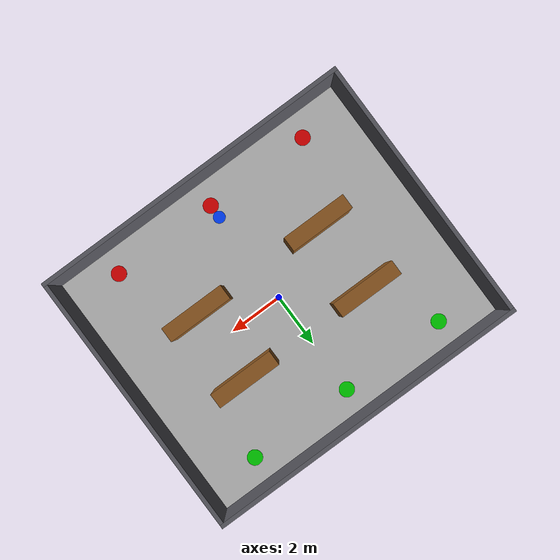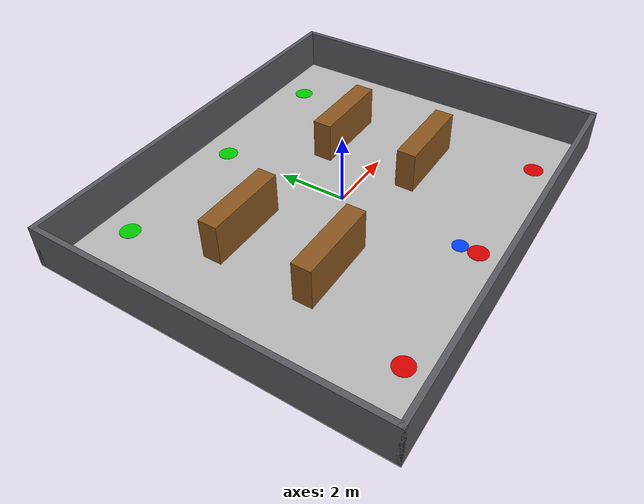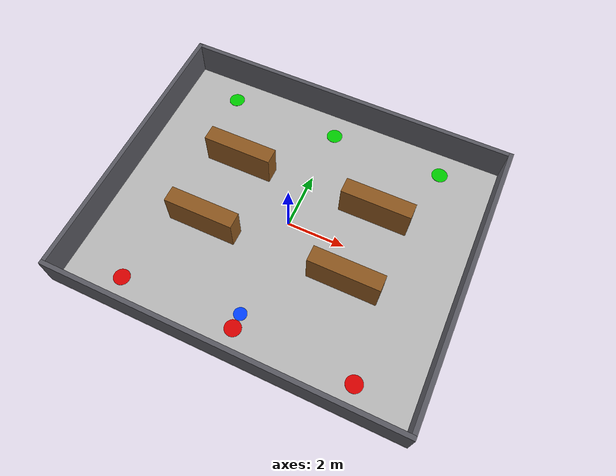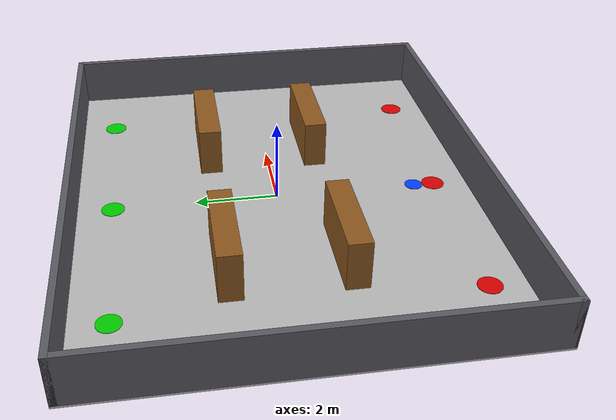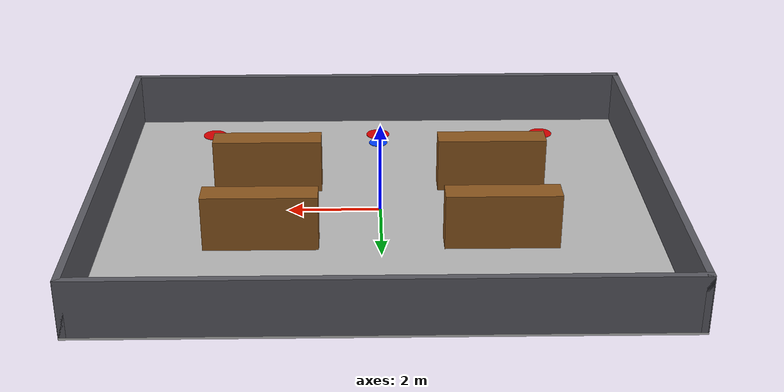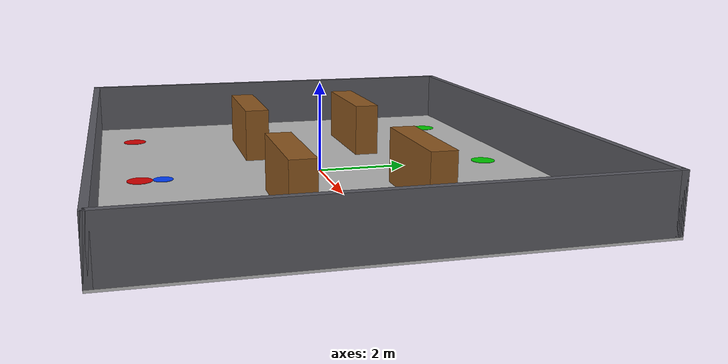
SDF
<?xml version="1.0"?>
<sdf version="1.6">
  <world name="arbotrix_warehouse">
    <!-- Lower physics rate for a 2-core VM while remaining adequate for 5 Hz Nav2 control. -->
    <physics name="vm_physics" type="ode">
      <max_step_size>0.01</max_step_size>
      <real_time_update_rate>100</real_time_update_rate>
      <real_time_factor>1.0</real_time_factor>
      <ode><solver><type>quick</type><iters>20</iters><sor>1.3</sor></solver></ode>
    </physics>

    <scene><ambient>0.45 0.45 0.45 1</ambient><background>0.75 0.78 0.82 1</background><shadows>false</shadows></scene>
    <light name="warehouse_light" type="directional">
      <cast_shadows>false</cast_shadows>
      <pose>0 0 8 0 0 0</pose>
      <diffuse>0.9 0.9 0.9 1</diffuse><specular>0.1 0.1 0.1 1</specular>
      <direction>-0.2 0.1 -1</direction>
    </light>

    <model name="floor">
      <static>true</static>
      <link name="link">
        <collision name="collision"><geometry><box><size>12 10 0.05</size></box></geometry><pose>0 0 -0.025 0 0 0</pose></collision>
        <visual name="visual"><geometry><box><size>12 10 0.05</size></box></geometry><pose>0 0 -0.025 0 0 0</pose><material><ambient>0.72 0.72 0.72 1</ambient><diffuse>0.72 0.72 0.72 1</diffuse></material></visual>
      </link>
    </model>

    <!-- 12 m x 10 m room; walls are 0.15 m thick. -->
    <model name="north_wall"><static>true</static><pose>0 4.925 0.6 0 0 0</pose><link name="link"><collision name="c"><geometry><box><size>12 0.15 1.2</size></box></geometry></collision><visual name="v"><geometry><box><size>12 0.15 1.2</size></box></geometry><material><diffuse>0.35 0.35 0.38 1</diffuse></material></visual></link></model>
    <model name="south_wall"><static>true</static><pose>0 -4.925 0.6 0 0 0</pose><link name="link"><collision name="c"><geometry><box><size>12 0.15 1.2</size></box></geometry></collision><visual name="v"><geometry><box><size>12 0.15 1.2</size></box></geometry><material><diffuse>0.35 0.35 0.38 1</diffuse></material></visual></link></model>
    <model name="east_wall"><static>true</static><pose>5.925 0 0.6 0 0 0</pose><link name="link"><collision name="c"><geometry><box><size>0.15 10 1.2</size></box></geometry></collision><visual name="v"><geometry><box><size>0.15 10 1.2</size></box></geometry><material><diffuse>0.35 0.35 0.38 1</diffuse></material></visual></link></model>
    <model name="west_wall"><static>true</static><pose>-5.925 0 0.6 0 0 0</pose><link name="link"><collision name="c"><geometry><box><size>0.15 10 1.2</size></box></geometry></collision><visual name="v"><geometry><box><size>0.15 10 1.2</size></box></geometry><material><diffuse>0.35 0.35 0.38 1</diffuse></material></visual></link></model>

    <!-- Four shelves leave a central aisle and broad outer lanes. -->
    <model name="shelf_1"><static>true</static><pose>-2.5 1.5 0.6 0 0 0</pose><link name="link"><collision name="c"><geometry><box><size>2.4 0.55 1.2</size></box></geometry></collision><visual name="v"><geometry><box><size>2.4 0.55 1.2</size></box></geometry><material><diffuse>0.55 0.34 0.12 1</diffuse></material></visual></link></model>
    <model name="shelf_2"><static>true</static><pose>2.5 1.5 0.6 0 0 0</pose><link name="link"><collision name="c"><geometry><box><size>2.4 0.55 1.2</size></box></geometry></collision><visual name="v"><geometry><box><size>2.4 0.55 1.2</size></box></geometry><material><diffuse>0.55 0.34 0.12 1</diffuse></material></visual></link></model>
    <model name="shelf_3"><static>true</static><pose>-2.5 -1.2 0.6 0 0 0</pose><link name="link"><collision name="c"><geometry><box><size>2.4 0.55 1.2</size></box></geometry></collision><visual name="v"><geometry><box><size>2.4 0.55 1.2</size></box></geometry><material><diffuse>0.55 0.34 0.12 1</diffuse></material></visual></link></model>
    <model name="shelf_4"><static>true</static><pose>2.5 -1.2 0.6 0 0 0</pose><link name="link"><collision name="c"><geometry><box><size>2.4 0.55 1.2</size></box></geometry></collision><visual name="v"><geometry><box><size>2.4 0.55 1.2</size></box></geometry><material><diffuse>0.55 0.34 0.12 1</diffuse></material></visual></link></model>

    <!-- Floor-only visual station markers; no collisions. -->
    <model name="station_A"><static>true</static><pose>-4 4 0.006 0 0 0</pose><link name="link"><visual name="v"><geometry><cylinder><radius>0.28</radius><length>0.01</length></cylinder></geometry><material><ambient>0 0.8 0 1</ambient><diffuse>0 0.8 0 1</diffuse></material></visual></link></model>
    <model name="station_B"><static>true</static><pose>0 4 0.006 0 0 0</pose><link name="link"><visual name="v"><geometry><cylinder><radius>0.28</radius><length>0.01</length></cylinder></geometry><material><ambient>0 0.8 0 1</ambient><diffuse>0 0.8 0 1</diffuse></material></visual></link></model>
    <model name="station_C"><static>true</static><pose>4 4 0.006 0 0 0</pose><link name="link"><visual name="v"><geometry><cylinder><radius>0.28</radius><length>0.01</length></cylinder></geometry><material><ambient>0 0.8 0 1</ambient><diffuse>0 0.8 0 1</diffuse></material></visual></link></model>
    <model name="drop_1"><static>true</static><pose>-4 -4 0.006 0 0 0</pose><link name="link"><visual name="v"><geometry><cylinder><radius>0.28</radius><length>0.01</length></cylinder></geometry><material><ambient>0.85 0 0 1</ambient><diffuse>0.85 0 0 1</diffuse></material></visual></link></model>
    <model name="drop_2"><static>true</static><pose>0 -4 0.006 0 0 0</pose><link name="link"><visual name="v"><geometry><cylinder><radius>0.28</radius><length>0.01</length></cylinder></geometry><material><ambient>0.85 0 0 1</ambient><diffuse>0.85 0 0 1</diffuse></material></visual></link></model>
    <model name="drop_3"><static>true</static><pose>4 -4 0.006 0 0 0</pose><link name="link"><visual name="v"><geometry><cylinder><radius>0.28</radius><length>0.01</length></cylinder></geometry><material><ambient>0.85 0 0 1</ambient><diffuse>0.85 0 0 1</diffuse></material></visual></link></model>
    <model name="home_base"><static>true</static><pose>0 -3.5 0.008 0 0 0</pose><link name="link"><visual name="v"><geometry><cylinder><radius>0.22</radius><length>0.012</length></cylinder></geometry><material><ambient>0 0.25 1 1</ambient><diffuse>0 0.25 1 1</diffuse></material></visual></link></model>

  </world>
</sdf>
